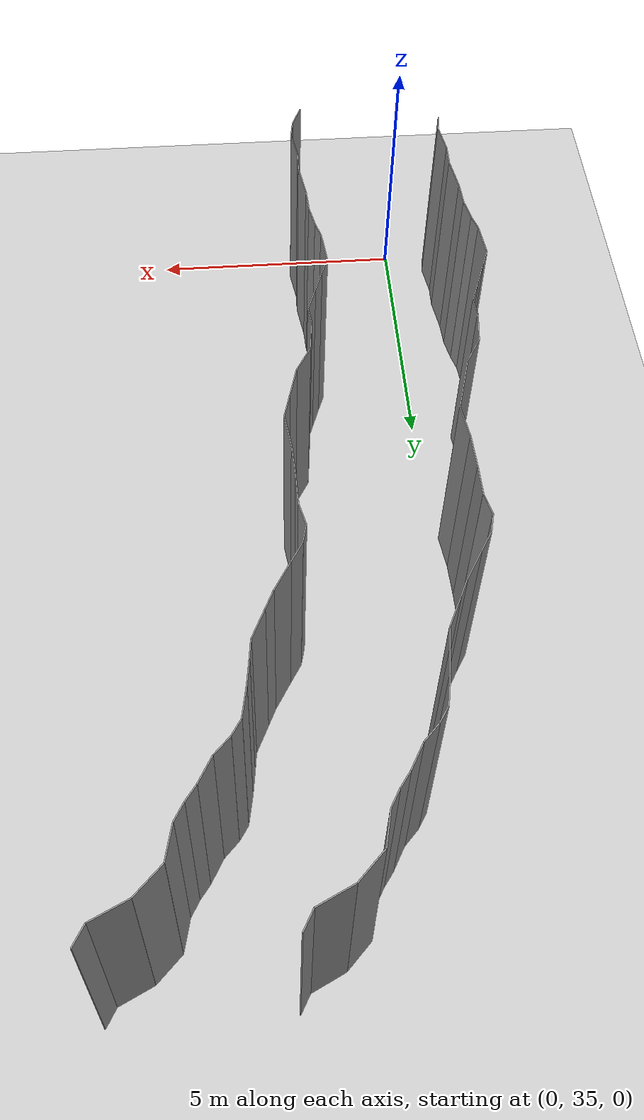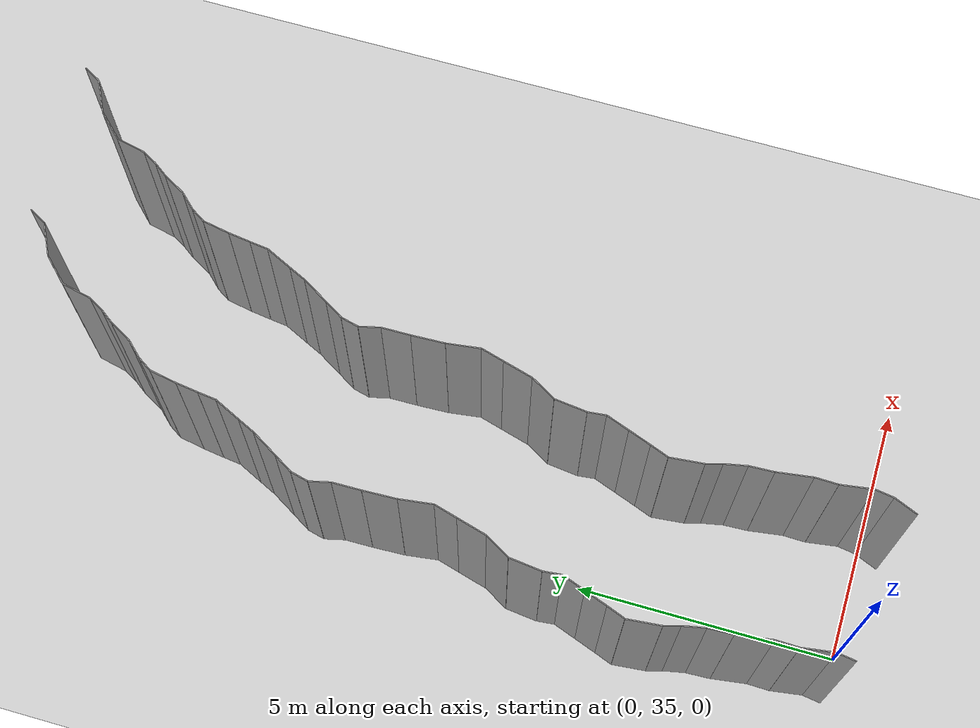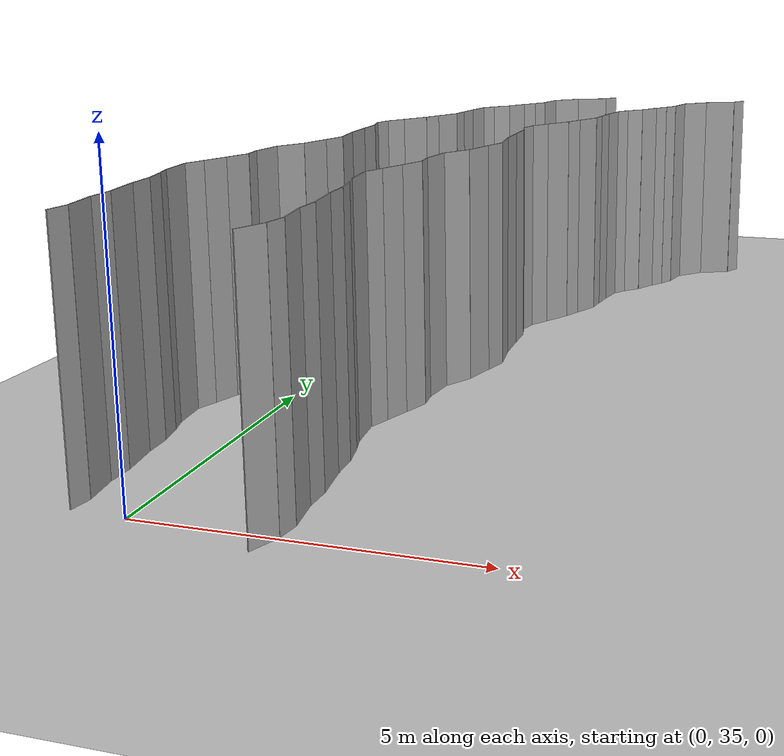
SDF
<sdf version="1.6">
 <world name="default">
  <model name="ground_plane">
   <static>1</static>
   <link name="link">
    <collision name="collision">
     <geometry><plane><normal>0 0 1</normal><size>200 200</size></plane></geometry>
     <surface><friction><ode><mu>100</mu><mu2>50</mu2></ode></friction></surface>
    </collision>
    <visual name="visual">
     <cast_shadows>0</cast_shadows>
     <geometry><plane><normal>0 0 1</normal><size>200 200</size></plane></geometry>
     <material>
      <script><uri>file://media/materials/scripts/gazebo.material</uri><name>Gazebo/Grey</name></script>
     </material>
    </visual>
   </link>
   <pose>0 100 0 0 -0 0</pose>
  </model>
  <model name="wall_149">
   <static>1</static>
   <pose>2.0463403493837693 34.81855095070675 2 0 0 -0.39390007437567404</pose>
   <link name="link">
    <collision name="collision"><geometry><box><size>0.02 0.496965548643 4</size></box></geometry></collision>
    <visual name="visual">
     <material>
      <script><name>Gazebo/Grey</name><uri>file://media/materials/scripts/gazebo.material</uri></script>
     </material>
     <geometry><box><size>0.02 0.496965548643 4</size></box></geometry>
    </visual>
   </link>
  </model>
  <model name="wall_150">
   <static>1</static>
   <pose>-0.8307653910295786 35.22959448608529 2 0 0 -0.1504509845447729</pose>
   <link name="link">
    <collision name="collision"><geometry><box><size>0.02 0.367329010076 4</size></box></geometry></collision>
    <visual name="visual">
     <material>
      <script><name>Gazebo/Grey</name><uri>file://media/materials/scripts/gazebo.material</uri></script>
     </material>
     <geometry><box><size>0.02 0.367329010076 4</size></box></geometry>
    </visual>
   </link>
  </model>
  <model name="wall_151">
   <static>1</static>
   <pose>2.1692346089704215 35.22959448608529 2 0 0 -0.1504509845447729</pose>
   <link name="link">
    <collision name="collision"><geometry><box><size>0.02 0.367329010076 4</size></box></geometry></collision>
    <visual name="visual">
     <material>
      <script><name>Gazebo/Grey</name><uri>file://media/materials/scripts/gazebo.material</uri></script>
     </material>
     <geometry><box><size>0.02 0.367329010076 4</size></box></geometry>
    </visual>
   </link>
  </model>
  <model name="wall_152">
   <static>1</static>
   <pose>-0.8471812714148739 35.72033726766235 2 0 0 0.14119813685778265</pose>
   <link name="link">
    <collision name="collision"><geometry><box><size>0.02 0.624521231456 4</size></box></geometry></collision>
    <visual name="visual">
     <material>
      <script><name>Gazebo/Grey</name><uri>file://media/materials/scripts/gazebo.material</uri></script>
     </material>
     <geometry><box><size>0.02 0.624521231456 4</size></box></geometry>
    </visual>
   </link>
  </model>
  <model name="wall_153">
   <static>1</static>
   <pose>2.1528187285851264 35.72033726766235 2 0 0 0.14119813685778265</pose>
   <link name="link">
    <collision name="collision"><geometry><box><size>0.02 0.624521231456 4</size></box></geometry></collision>
    <visual name="visual">
     <material>
      <script><name>Gazebo/Grey</name><uri>file://media/materials/scripts/gazebo.material</uri></script>
     </material>
     <geometry><box><size>0.02 0.624521231456 4</size></box></geometry>
    </visual>
   </link>
  </model>
  <model name="wall_154">
   <static>1</static>
   <pose>-0.8857843707487641 36.250797252739716 2 0 0 -0.0241299326227305</pose>
   <link name="link">
    <collision name="collision"><geometry><box><size>0.02 0.442742803492 4</size></box></geometry></collision>
    <visual name="visual">
     <material>
      <script><name>Gazebo/Grey</name><uri>file://media/materials/scripts/gazebo.material</uri></script>
     </material>
     <geometry><box><size>0.02 0.442742803492 4</size></box></geometry>
    </visual>
   </link>
  </model>
  <model name="wall_155">
   <static>1</static>
   <pose>2.1142156292512357 36.250797252739716 2 0 0 -0.0241299326227305</pose>
   <link name="link">
    <collision name="collision"><geometry><box><size>0.02 0.442742803492 4</size></box></geometry></collision>
    <visual name="visual">
     <material>
      <script><name>Gazebo/Grey</name><uri>file://media/materials/scripts/gazebo.material</uri></script>
     </material>
     <geometry><box><size>0.02 0.442742803492 4</size></box></geometry>
    </visual>
   </link>
  </model>
  <model name="wall_156">
   <static>1</static>
   <pose>-0.9278924435614688 36.8156273364494 2 0 0 0.13725679830244053</pose>
   <link name="link">
    <collision name="collision"><geometry><box><size>0.02 0.693569225548 4</size></box></geometry></collision>
    <visual name="visual">
     <material>
      <script><name>Gazebo/Grey</name><uri>file://media/materials/scripts/gazebo.material</uri></script>
     </material>
     <geometry><box><size>0.02 0.693569225548 4</size></box></geometry>
    </visual>
   </link>
  </model>
  <model name="wall_157">
   <static>1</static>
   <pose>2.072107556438531 36.8156273364494 2 0 0 0.13725679830244053</pose>
   <link name="link">
    <collision name="collision"><geometry><box><size>0.02 0.693569225548 4</size></box></geometry></collision>
    <visual name="visual">
     <material>
      <script><name>Gazebo/Grey</name><uri>file://media/materials/scripts/gazebo.material</uri></script>
     </material>
     <geometry><box><size>0.02 0.693569225548 4</size></box></geometry>
    </visual>
   </link>
  </model>
  <model name="wall_158">
   <static>1</static>
   <pose>-0.9852781787892612 37.396884334509764 2 0 0 0.04177243855801625</pose>
   <link name="link">
    <collision name="collision"><geometry><box><size>0.02 0.4758828765 4</size></box></geometry></collision>
    <visual name="visual">
     <material>
      <script><name>Gazebo/Grey</name><uri>file://media/materials/scripts/gazebo.material</uri></script>
     </material>
     <geometry><box><size>0.02 0.4758828765 4</size></box></geometry>
    </visual>
   </link>
  </model>
  <model name="wall_159">
   <static>1</static>
   <pose>2.0147218212107387 37.396884334509764 2 0 0 0.04177243855801625</pose>
   <link name="link">
    <collision name="collision"><geometry><box><size>0.02 0.4758828765 4</size></box></geometry></collision>
    <visual name="visual">
     <material>
      <script><name>Gazebo/Grey</name><uri>file://media/materials/scripts/gazebo.material</uri></script>
     </material>
     <geometry><box><size>0.02 0.4758828765 4</size></box></geometry>
    </visual>
   </link>
  </model>
  <model name="wall_160">
   <static>1</static>
   <pose>-1.0375826737935796 37.851169824171826 2 0 0 0.1932079102040709</pose>
   <link name="link">
    <collision name="collision"><geometry><box><size>0.02 0.441314625924 4</size></box></geometry></collision>
    <visual name="visual">
     <material>
      <script><name>Gazebo/Grey</name><uri>file://media/materials/scripts/gazebo.material</uri></script>
     </material>
     <geometry><box><size>0.02 0.441314625924 4</size></box></geometry>
    </visual>
   </link>
  </model>
  <model name="wall_161">
   <static>1</static>
   <pose>1.9624173262064204 37.851169824171826 2 0 0 0.1932079102040709</pose>
   <link name="link">
    <collision name="collision"><geometry><box><size>0.02 0.441314625924 4</size></box></geometry></collision>
    <visual name="visual">
     <material>
      <script><name>Gazebo/Grey</name><uri>file://media/materials/scripts/gazebo.material</uri></script>
     </material>
     <geometry><box><size>0.02 0.441314625924 4</size></box></geometry>
    </visual>
   </link>
  </model>
  <model name="wall_162">
   <static>1</static>
   <pose>-1.1232717379677792 38.21960621935604 2 0 0 0.27784564223390856</pose>
   <link name="link">
    <collision name="collision"><geometry><box><size>0.02 0.315884162465 4</size></box></geometry></collision>
    <visual name="visual">
     <material>
      <script><name>Gazebo/Grey</name><uri>file://media/materials/scripts/gazebo.material</uri></script>
     </material>
     <geometry><box><size>0.02 0.315884162465 4</size></box></geometry>
    </visual>
   </link>
  </model>
  <model name="wall_163">
   <static>1</static>
   <pose>1.8767282620322208 38.21960621935604 2 0 0 0.27784564223390856</pose>
   <link name="link">
    <collision name="collision"><geometry><box><size>0.02 0.315884162465 4</size></box></geometry></collision>
    <visual name="visual">
     <material>
      <script><name>Gazebo/Grey</name><uri>file://media/materials/scripts/gazebo.material</uri></script>
     </material>
     <geometry><box><size>0.02 0.315884162465 4</size></box></geometry>
    </visual>
   </link>
  </model>
  <model name="wall_164">
   <static>1</static>
   <pose>-1.19698223862865 38.696664706704325 2 0 0 0.09318531489649919</pose>
   <link name="link">
    <collision name="collision"><geometry><box><size>0.02 0.653181318882 4</size></box></geometry></collision>
    <visual name="visual">
     <material>
      <script><name>Gazebo/Grey</name><uri>file://media/materials/scripts/gazebo.material</uri></script>
     </material>
     <geometry><box><size>0.02 0.653181318882 4</size></box></geometry>
    </visual>
   </link>
  </model>
  <model name="wall_165">
   <static>1</static>
   <pose>1.80301776137135 38.696664706704325 2 0 0 0.09318531489649919</pose>
   <link name="link">
    <collision name="collision"><geometry><box><size>0.02 0.653181318882 4</size></box></geometry></collision>
    <visual name="visual">
     <material>
      <script><name>Gazebo/Grey</name><uri>file://media/materials/scripts/gazebo.material</uri></script>
     </material>
     <geometry><box><size>0.02 0.653181318882 4</size></box></geometry>
    </visual>
   </link>
  </model>
  <model name="wall_166">
   <static>1</static>
   <pose>-1.1606711354563517 39.199286660504235 2 0 0 -0.35954829855200604</pose>
   <link name="link">
    <collision name="collision"><geometry><box><size>0.02 0.379140291381 4</size></box></geometry></collision>
    <visual name="visual">
     <material>
      <script><name>Gazebo/Grey</name><uri>file://media/materials/scripts/gazebo.material</uri></script>
     </material>
     <geometry><box><size>0.02 0.379140291381 4</size></box></geometry>
    </visual>
   </link>
  </model>
  <model name="wall_167">
   <static>1</static>
   <pose>1.8393288645436483 39.199286660504235 2 0 0 -0.35954829855200604</pose>
   <link name="link">
    <collision name="collision"><geometry><box><size>0.02 0.379140291381 4</size></box></geometry></collision>
    <visual name="visual">
     <material>
      <script><name>Gazebo/Grey</name><uri>file://media/materials/scripts/gazebo.material</uri></script>
     </material>
     <geometry><box><size>0.02 0.379140291381 4</size></box></geometry>
    </visual>
   </link>
  </model>
  <model name="wall_168">
   <static>1</static>
   <pose>-1.0152852117930435 39.594763209708006 2 0 0 -0.34634794454651496</pose>
   <link name="link">
    <collision name="collision"><geometry><box><size>0.02 0.463584869833 4</size></box></geometry></collision>
    <visual name="visual">
     <material>
      <script><name>Gazebo/Grey</name><uri>file://media/materials/scripts/gazebo.material</uri></script>
     </material>
     <geometry><box><size>0.02 0.463584869833 4</size></box></geometry>
    </visual>
   </link>
  </model>
  <model name="wall_169">
   <static>1</static>
   <pose>1.9847147882069565 39.594763209708006 2 0 0 -0.34634794454651496</pose>
   <link name="link">
    <collision name="collision"><geometry><box><size>0.02 0.463584869833 4</size></box></geometry></collision>
    <visual name="visual">
     <material>
      <script><name>Gazebo/Grey</name><uri>file://media/materials/scripts/gazebo.material</uri></script>
     </material>
     <geometry><box><size>0.02 0.463584869833 4</size></box></geometry>
    </visual>
   </link>
  </model>
  <model name="wall_170">
   <static>1</static>
   <pose>-0.8558548242621856 40.036595878988855 2 0 0 -0.34624930416235994</pose>
   <link name="link">
    <collision name="collision"><geometry><box><size>0.02 0.475849335737 4</size></box></geometry></collision>
    <visual name="visual">
     <material>
      <script><name>Gazebo/Grey</name><uri>file://media/materials/scripts/gazebo.material</uri></script>
     </material>
     <geometry><box><size>0.02 0.475849335737 4</size></box></geometry>
    </visual>
   </link>
  </model>
  <model name="wall_171">
   <static>1</static>
   <pose>2.1441451757378145 40.036595878988855 2 0 0 -0.34624930416235994</pose>
   <link name="link">
    <collision name="collision"><geometry><box><size>0.02 0.475849335737 4</size></box></geometry></collision>
    <visual name="visual">
     <material>
      <script><name>Gazebo/Grey</name><uri>file://media/materials/scripts/gazebo.material</uri></script>
     </material>
     <geometry><box><size>0.02 0.475849335737 4</size></box></geometry>
    </visual>
   </link>
  </model>
  <model name="wall_172">
   <static>1</static>
   <pose>-0.792989206374428 40.43344107549556 2 0 0 0.10295925259138435</pose>
   <link name="link">
    <collision name="collision"><geometry><box><size>0.02 0.347924139953 4</size></box></geometry></collision>
    <visual name="visual">
     <material>
      <script><name>Gazebo/Grey</name><uri>file://media/materials/scripts/gazebo.material</uri></script>
     </material>
     <geometry><box><size>0.02 0.347924139953 4</size></box></geometry>
    </visual>
   </link>
  </model>
  <model name="wall_173">
   <static>1</static>
   <pose>2.207010793625572 40.43344107549556 2 0 0 0.10295925259138435</pose>
   <link name="link">
    <collision name="collision"><geometry><box><size>0.02 0.347924139953 4</size></box></geometry></collision>
    <visual name="visual">
     <material>
      <script><name>Gazebo/Grey</name><uri>file://media/materials/scripts/gazebo.material</uri></script>
     </material>
     <geometry><box><size>0.02 0.347924139953 4</size></box></geometry>
    </visual>
   </link>
  </model>
  <model name="wall_174">
   <static>1</static>
   <pose>-0.7741629225939759 40.91818674523233 2 0 0 -0.11721792431574468</pose>
   <link name="link">
    <collision name="collision"><geometry><box><size>0.02 0.627717169282 4</size></box></geometry></collision>
    <visual name="visual">
     <material>
      <script><name>Gazebo/Grey</name><uri>file://media/materials/scripts/gazebo.material</uri></script>
     </material>
     <geometry><box><size>0.02 0.627717169282 4</size></box></geometry>
    </visual>
   </link>
  </model>
  <model name="wall_175">
   <static>1</static>
   <pose>2.225837077406024 40.91818674523233 2 0 0 -0.11721792431574468</pose>
   <link name="link">
    <collision name="collision"><geometry><box><size>0.02 0.627717169282 4</size></box></geometry></collision>
    <visual name="visual">
     <material>
      <script><name>Gazebo/Grey</name><uri>file://media/materials/scripts/gazebo.material</uri></script>
     </material>
     <geometry><box><size>0.02 0.627717169282 4</size></box></geometry>
    </visual>
   </link>
  </model>
  <model name="wall_176">
   <static>1</static>
   <pose>-0.5985695121379033 41.47058890323169 2 0 0 -0.5233528517558504</pose>
   <link name="link">
    <collision name="collision"><geometry><box><size>0.02 0.555787755207 4</size></box></geometry></collision>
    <visual name="visual">
     <material>
      <script><name>Gazebo/Grey</name><uri>file://media/materials/scripts/gazebo.material</uri></script>
     </material>
     <geometry><box><size>0.02 0.555787755207 4</size></box></geometry>
    </visual>
   </link>
  </model>
  <model name="wall_177">
   <static>1</static>
   <pose>2.401430487862097 41.47058890323169 2 0 0 -0.5233528517558504</pose>
   <link name="link">
    <collision name="collision"><geometry><box><size>0.02 0.555787755207 4</size></box></geometry></collision>
    <visual name="visual">
     <material>
      <script><name>Gazebo/Grey</name><uri>file://media/materials/scripts/gazebo.material</uri></script>
     </material>
     <geometry><box><size>0.02 0.555787755207 4</size></box></geometry>
    </visual>
   </link>
  </model>
  <model name="wall_178">
   <static>1</static>
   <pose>-0.38046003223682356 41.9991808050046 2 0 0 -0.2685299935454256</pose>
   <link name="link">
    <collision name="collision"><geometry><box><size>0.02 0.597191334038 4</size></box></geometry></collision>
    <visual name="visual">
     <material>
      <script><name>Gazebo/Grey</name><uri>file://media/materials/scripts/gazebo.material</uri></script>
     </material>
     <geometry><box><size>0.02 0.597191334038 4</size></box></geometry>
    </visual>
   </link>
  </model>
  <model name="wall_179">
   <static>1</static>
   <pose>2.6195399677631763 41.9991808050046 2 0 0 -0.2685299935454256</pose>
   <link name="link">
    <collision name="collision"><geometry><box><size>0.02 0.597191334038 4</size></box></geometry></collision>
    <visual name="visual">
     <material>
      <script><name>Gazebo/Grey</name><uri>file://media/materials/scripts/gazebo.material</uri></script>
     </material>
     <geometry><box><size>0.02 0.597191334038 4</size></box></geometry>
    </visual>
   </link>
  </model>
  <model name="wall_180">
   <static>1</static>
   <pose>-0.23849294736575838 42.51145017308904 2 0 0 -0.2726797602216973</pose>
   <link name="link">
    <collision name="collision"><geometry><box><size>0.02 0.465965769419 4</size></box></geometry></collision>
    <visual name="visual">
     <material>
      <script><name>Gazebo/Grey</name><uri>file://media/materials/scripts/gazebo.material</uri></script>
     </material>
     <geometry><box><size>0.02 0.465965769419 4</size></box></geometry>
    </visual>
   </link>
  </model>
  <model name="wall_181">
   <static>1</static>
   <pose>2.761507052634242 42.51145017308904 2 0 0 -0.2726797602216973</pose>
   <link name="link">
    <collision name="collision"><geometry><box><size>0.02 0.465965769419 4</size></box></geometry></collision>
    <visual name="visual">
     <material>
      <script><name>Gazebo/Grey</name><uri>file://media/materials/scripts/gazebo.material</uri></script>
     </material>
     <geometry><box><size>0.02 0.465965769419 4</size></box></geometry>
    </visual>
   </link>
  </model>
  <model name="wall_182">
   <static>1</static>
   <pose>-0.21749381832541137 43.058203343227845 2 0 0 0.12877786738828223</pose>
   <link name="link">
    <collision name="collision"><geometry><box><size>0.02 0.650140198121 4</size></box></geometry></collision>
    <visual name="visual">
     <material>
      <script><name>Gazebo/Grey</name><uri>file://media/materials/scripts/gazebo.material</uri></script>
     </material>
     <geometry><box><size>0.02 0.650140198121 4</size></box></geometry>
    </visual>
   </link>
  </model>
  <model name="wall_183">
   <static>1</static>
   <pose>2.782506181674589 43.058203343227845 2 0 0 0.12877786738828223</pose>
   <link name="link">
    <collision name="collision"><geometry><box><size>0.02 0.650140198121 4</size></box></geometry></collision>
    <visual name="visual">
     <material>
      <script><name>Gazebo/Grey</name><uri>file://media/materials/scripts/gazebo.material</uri></script>
     </material>
     <geometry><box><size>0.02 0.650140198121 4</size></box></geometry>
    </visual>
   </link>
  </model>
  <model name="wall_184">
   <static>1</static>
   <pose>-0.27024887221274146 43.7028665783337 2 0 0 0.03414541308888559</pose>
   <link name="link">
    <collision name="collision"><geometry><box><size>0.02 0.644945641365 4</size></box></geometry></collision>
    <visual name="visual">
     <material>
      <script><name>Gazebo/Grey</name><uri>file://media/materials/scripts/gazebo.material</uri></script>
     </material>
     <geometry><box><size>0.02 0.644945641365 4</size></box></geometry>
    </visual>
   </link>
  </model>
  <model name="wall_185">
   <static>1</static>
   <pose>2.7297511277872584 43.7028665783337 2 0 0 0.03414541308888559</pose>
   <link name="link">
    <collision name="collision"><geometry><box><size>0.02 0.644945641365 4</size></box></geometry></collision>
    <visual name="visual">
     <material>
      <script><name>Gazebo/Grey</name><uri>file://media/materials/scripts/gazebo.material</uri></script>
     </material>
     <geometry><box><size>0.02 0.644945641365 4</size></box></geometry>
    </visual>
   </link>
  </model>
  <model name="wall_186">
   <static>1</static>
   <pose>-0.28409382832171326 44.301602974397504 2 0 0 0.010258681896109791</pose>
   <link name="link">
    <collision name="collision"><geometry><box><size>0.02 0.552932183464 4</size></box></geometry></collision>
    <visual name="visual">
     <material>
      <script><name>Gazebo/Grey</name><uri>file://media/materials/scripts/gazebo.material</uri></script>
     </material>
     <geometry><box><size>0.02 0.552932183464 4</size></box></geometry>
    </visual>
   </link>
  </model>
  <model name="wall_187">
   <static>1</static>
   <pose>2.7159061716782866 44.301602974397504 2 0 0 0.010258681896109791</pose>
   <link name="link">
    <collision name="collision"><geometry><box><size>0.02 0.552932183464 4</size></box></geometry></collision>
    <visual name="visual">
     <material>
      <script><name>Gazebo/Grey</name><uri>file://media/materials/scripts/gazebo.material</uri></script>
     </material>
     <geometry><box><size>0.02 0.552932183464 4</size></box></geometry>
    </visual>
   </link>
  </model>
  <model name="wall_188">
   <static>1</static>
   <pose>-0.3342609913680297 44.7787057406337 2 0 0 0.23165246893831268</pose>
   <link name="link">
    <collision name="collision"><geometry><box><size>0.02 0.412316091434 4</size></box></geometry></collision>
    <visual name="visual">
     <material>
      <script><name>Gazebo/Grey</name><uri>file://media/materials/scripts/gazebo.material</uri></script>
     </material>
     <geometry><box><size>0.02 0.412316091434 4</size></box></geometry>
    </visual>
   </link>
  </model>
  <model name="wall_189">
   <static>1</static>
   <pose>2.66573900863197 44.7787057406337 2 0 0 0.23165246893831268</pose>
   <link name="link">
    <collision name="collision"><geometry><box><size>0.02 0.412316091434 4</size></box></geometry></collision>
    <visual name="visual">
     <material>
      <script><name>Gazebo/Grey</name><uri>file://media/materials/scripts/gazebo.material</uri></script>
     </material>
     <geometry><box><size>0.02 0.412316091434 4</size></box></geometry>
    </visual>
   </link>
  </model>
  <model name="wall_190">
   <static>1</static>
   <pose>-0.3397822606859564 45.14906838681725 2 0 0 -0.2415479651366333</pose>
   <link name="link">
    <collision name="collision"><geometry><box><size>0.02 0.349571303054 4</size></box></geometry></collision>
    <visual name="visual">
     <material>
      <script><name>Gazebo/Grey</name><uri>file://media/materials/scripts/gazebo.material</uri></script>
     </material>
     <geometry><box><size>0.02 0.349571303054 4</size></box></geometry>
    </visual>
   </link>
  </model>
  <model name="wall_191">
   <static>1</static>
   <pose>2.6602177393140436 45.14906838681725 2 0 0 -0.2415479651366333</pose>
   <link name="link">
    <collision name="collision"><geometry><box><size>0.02 0.349571303054 4</size></box></geometry></collision>
    <visual name="visual">
     <material>
      <script><name>Gazebo/Grey</name><uri>file://media/materials/scripts/gazebo.material</uri></script>
     </material>
     <geometry><box><size>0.02 0.349571303054 4</size></box></geometry>
    </visual>
   </link>
  </model>
  <model name="wall_192">
   <static>1</static>
   <pose>-0.19134101303724932 45.494587281813494 2 0 0 -0.5452028856498747</pose>
   <link name="link">
    <collision name="collision"><geometry><box><size>0.02 0.411234919494 4</size></box></geometry></collision>
    <visual name="visual">
     <material>
      <script><name>Gazebo/Grey</name><uri>file://media/materials/scripts/gazebo.material</uri></script>
     </material>
     <geometry><box><size>0.02 0.411234919494 4</size></box></geometry>
    </visual>
   </link>
  </model>
  <model name="wall_193">
   <static>1</static>
   <pose>2.8086589869627505 45.494587281813494 2 0 0 -0.5452028856498747</pose>
   <link name="link">
    <collision name="collision"><geometry><box><size>0.02 0.411234919494 4</size></box></geometry></collision>
    <visual name="visual">
     <material>
      <script><name>Gazebo/Grey</name><uri>file://media/materials/scripts/gazebo.material</uri></script>
     </material>
     <geometry><box><size>0.02 0.411234919494 4</size></box></geometry>
    </visual>
   </link>
  </model>
  <model name="wall_194">
   <static>1</static>
   <pose>0.06523929335011949 45.920232297307486 2 0 0 -0.5405557475985513</pose>
   <link name="link">
    <collision name="collision"><geometry><box><size>0.02 0.58276392702 4</size></box></geometry></collision>
    <visual name="visual">
     <material>
      <script><name>Gazebo/Grey</name><uri>file://media/materials/scripts/gazebo.material</uri></script>
     </material>
     <geometry><box><size>0.02 0.58276392702 4</size></box></geometry>
    </visual>
   </link>
  </model>
  <model name="wall_195">
   <static>1</static>
   <pose>3.0652392933501194 45.920232297307486 2 0 0 -0.5405557475985513</pose>
   <link name="link">
    <collision name="collision"><geometry><box><size>0.02 0.58276392702 4</size></box></geometry></collision>
    <visual name="visual">
     <material>
      <script><name>Gazebo/Grey</name><uri>file://media/materials/scripts/gazebo.material</uri></script>
     </material>
     <geometry><box><size>0.02 0.58276392702 4</size></box></geometry>
    </visual>
   </link>
  </model>
  <model name="wall_196">
   <static>1</static>
   <pose>0.2912266696608786 46.332766654824596 2 0 0 -0.43719922341279954</pose>
   <link name="link">
    <collision name="collision"><geometry><box><size>0.02 0.359177473108 4</size></box></geometry></collision>
    <visual name="visual">
     <material>
      <script><name>Gazebo/Grey</name><uri>file://media/materials/scripts/gazebo.material</uri></script>
     </material>
     <geometry><box><size>0.02 0.359177473108 4</size></box></geometry>
    </visual>
   </link>
  </model>
  <model name="wall_197">
   <static>1</static>
   <pose>3.2912266696608787 46.332766654824596 2 0 0 -0.43719922341279954</pose>
   <link name="link">
    <collision name="collision"><geometry><box><size>0.02 0.359177473108 4</size></box></geometry></collision>
    <visual name="visual">
     <material>
      <script><name>Gazebo/Grey</name><uri>file://media/materials/scripts/gazebo.material</uri></script>
     </material>
     <geometry><box><size>0.02 0.359177473108 4</size></box></geometry>
    </visual>
   </link>
  </model>
  <model name="wall_198">
   <static>1</static>
   <pose>0.485753288650014 46.74542503419017 2 0 0 -0.4426526399162673</pose>
   <link name="link">
    <collision name="collision"><geometry><box><size>0.02 0.553245720315 4</size></box></geometry></collision>
    <visual name="visual">
     <material>
      <script><name>Gazebo/Grey</name><uri>file://media/materials/scripts/gazebo.material</uri></script>
     </material>
     <geometry><box><size>0.02 0.553245720315 4</size></box></geometry>
    </visual>
   </link>
  </model>
  <model name="wall_199">
   <static>1</static>
   <pose>3.485753288650014 46.74542503419017 2 0 0 -0.4426526399162673</pose>
   <link name="link">
    <collision name="collision"><geometry><box><size>0.02 0.553245720315 4</size></box></geometry></collision>
    <visual name="visual">
     <material>
      <script><name>Gazebo/Grey</name><uri>file://media/materials/scripts/gazebo.material</uri></script>
     </material>
     <geometry><box><size>0.02 0.553245720315 4</size></box></geometry>
    </visual>
   </link>
  </model>
  <model name="wall_200">
   <static>1</static>
   <pose>0.6264707821404519 47.17204354883898 2 0 0 -0.12517594482902528</pose>
   <link name="link">
    <collision name="collision"><geometry><box><size>0.02 0.356100124947 4</size></box></geometry></collision>
    <visual name="visual">
     <material>
      <script><name>Gazebo/Grey</name><uri>file://media/materials/scripts/gazebo.material</uri></script>
     </material>
     <geometry><box><size>0.02 0.356100124947 4</size></box></geometry>
    </visual>
   </link>
  </model>
  <model name="wall_201">
   <static>1</static>
   <pose>3.626470782140452 47.17204354883898 2 0 0 -0.12517594482902528</pose>
   <link name="link">
    <collision name="collision"><geometry><box><size>0.02 0.356100124947 4</size></box></geometry></collision>
    <visual name="visual">
     <material>
      <script><name>Gazebo/Grey</name><uri>file://media/materials/scripts/gazebo.material</uri></script>
     </material>
     <geometry><box><size>0.02 0.356100124947 4</size></box></geometry>
    </visual>
   </link>
  </model>
  <model name="wall_202">
   <static>1</static>
   <pose>0.6784537866609816 47.56176181563618 2 0 0 -0.138750650940564</pose>
   <link name="link">
    <collision name="collision"><geometry><box><size>0.02 0.430257601408 4</size></box></geometry></collision>
    <visual name="visual">
     <material>
      <script><name>Gazebo/Grey</name><uri>file://media/materials/scripts/gazebo.material</uri></script>
     </material>
     <geometry><box><size>0.02 0.430257601408 4</size></box></geometry>
    </visual>
   </link>
  </model>
  <model name="wall_203">
   <static>1</static>
   <pose>3.6784537866609814 47.56176181563618 2 0 0 -0.138750650940564</pose>
   <link name="link">
    <collision name="collision"><geometry><box><size>0.02 0.430257601408 4</size></box></geometry></collision>
    <visual name="visual">
     <material>
      <script><name>Gazebo/Grey</name><uri>file://media/materials/scripts/gazebo.material</uri></script>
     </material>
     <geometry><box><size>0.02 0.430257601408 4</size></box></geometry>
    </visual>
   </link>
  </model>
  <model name="wall_204">
   <static>1</static>
   <pose>0.757287399433547 48.035705526418845 2 0 0 -0.1859573360919918</pose>
   <link name="link">
    <collision name="collision"><geometry><box><size>0.02 0.530917968626 4</size></box></geometry></collision>
    <visual name="visual">
     <material>
      <script><name>Gazebo/Grey</name><uri>file://media/materials/scripts/gazebo.material</uri></script>
     </material>
     <geometry><box><size>0.02 0.530917968626 4</size></box></geometry>
    </visual>
   </link>
  </model>
  <model name="wall_205">
   <static>1</static>
   <pose>3.757287399433547 48.035705526418845 2 0 0 -0.1859573360919918</pose>
   <link name="link">
    <collision name="collision"><geometry><box><size>0.02 0.530917968626 4</size></box></geometry></collision>
    <visual name="visual">
     <material>
      <script><name>Gazebo/Grey</name><uri>file://media/materials/scripts/gazebo.material</uri></script>
     </material>
     <geometry><box><size>0.02 0.530917968626 4</size></box></geometry>
    </visual>
   </link>
  </model>
  <model name="wall_206">
   <static>1</static>
   <pose>0.8892318615404565 48.42610224597583 2 0 0 -0.5691776541502682</pose>
   <link name="link">
    <collision name="collision"><geometry><box><size>0.02 0.307509182599 4</size></box></geometry></collision>
    <visual name="visual">
     <material>
      <script><name>Gazebo/Grey</name><uri>file://media/materials/scripts/gazebo.material</uri></script>
     </material>
     <geometry><box><size>0.02 0.307509182599 4</size></box></geometry>
    </visual>
   </link>
  </model>
  <model name="wall_207">
   <static>1</static>
   <pose>3.8892318615404564 48.42610224597583 2 0 0 -0.5691776541502682</pose>
   <link name="link">
    <collision name="collision"><geometry><box><size>0.02 0.307509182599 4</size></box></geometry></collision>
    <visual name="visual">
     <material>
      <script><name>Gazebo/Grey</name><uri>file://media/materials/scripts/gazebo.material</uri></script>
     </material>
     <geometry><box><size>0.02 0.307509182599 4</size></box></geometry>
    </visual>
   </link>
  </model>
  <model name="wall_208">
   <static>1</static>
   <pose>1.10528627267682 48.6948444075908 2 0 0 -0.76323785702337</pose>
   <link name="link">
    <collision name="collision"><geometry><box><size>0.02 0.385351587808 4</size></box></geometry></collision>
    <visual name="visual">
     <material>
      <script><name>Gazebo/Grey</name><uri>file://media/materials/scripts/gazebo.material</uri></script>
     </material>
     <geometry><box><size>0.02 0.385351587808 4</size></box></geometry>
    </visual>
   </link>
  </model>
  <model name="wall_209">
   <static>1</static>
   <pose>4.10528627267682 48.6948444075908 2 0 0 -0.76323785702337</pose>
   <link name="link">
    <collision name="collision"><geometry><box><size>0.02 0.385351587808 4</size></box></geometry></collision>
    <visual name="visual">
     <material>
      <script><name>Gazebo/Grey</name><uri>file://media/materials/scripts/gazebo.material</uri></script>
     </material>
     <geometry><box><size>0.02 0.385351587808 4</size></box></geometry>
    </visual>
   </link>
  </model>
  <model name="wall_210">
   <static>1</static>
   <pose>1.3570142953062982 49.04382667343974 2 0 0 -0.5143833336845921</pose>
   <link name="link">
    <collision name="collision"><geometry><box><size>0.02 0.481863832528 4</size></box></geometry></collision>
    <visual name="visual">
     <material>
      <script><name>Gazebo/Grey</name><uri>file://media/materials/scripts/gazebo.material</uri></script>
     </material>
     <geometry><box><size>0.02 0.481863832528 4</size></box></geometry>
    </visual>
   </link>
  </model>
  <model name="wall_211">
   <static>1</static>
   <pose>4.357014295306298 49.04382667343974 2 0 0 -0.5143833336845921</pose>
   <link name="link">
    <collision name="collision"><geometry><box><size>0.02 0.481863832528 4</size></box></geometry></collision>
    <visual name="visual">
     <material>
      <script><name>Gazebo/Grey</name><uri>file://media/materials/scripts/gazebo.material</uri></script>
     </material>
     <geometry><box><size>0.02 0.481863832528 4</size></box></geometry>
    </visual>
   </link>
  </model>
  <model name="wall_212">
   <static>1</static>
   <pose>1.566300715869001 49.37806521157364 2 0 0 -0.6299222967253735</pose>
   <link name="link">
    <collision name="collision"><geometry><box><size>0.02 0.308101032314 4</size></box></geometry></collision>
    <visual name="visual">
     <material>
      <script><name>Gazebo/Grey</name><uri>file://media/materials/scripts/gazebo.material</uri></script>
     </material>
     <geometry><box><size>0.02 0.308101032314 4</size></box></geometry>
    </visual>
   </link>
  </model>
  <model name="wall_213">
   <static>1</static>
   <pose>4.566300715869001 49.37806521157364 2 0 0 -0.6299222967253735</pose>
   <link name="link">
    <collision name="collision"><geometry><box><size>0.02 0.308101032314 4</size></box></geometry></collision>
    <visual name="visual">
     <material>
      <script><name>Gazebo/Grey</name><uri>file://media/materials/scripts/gazebo.material</uri></script>
     </material>
     <geometry><box><size>0.02 0.308101032314 4</size></box></geometry>
    </visual>
   </link>
  </model>
  <model name="wall_214">
   <static>1</static>
   <pose>1.7366093676156995 49.6411193265216 2 0 0 -0.5211968754127307</pose>
   <link name="link">
    <collision name="collision"><geometry><box><size>0.02 0.319571487023 4</size></box></geometry></collision>
    <visual name="visual">
     <material>
      <script><name>Gazebo/Grey</name><uri>file://media/materials/scripts/gazebo.material</uri></script>
     </material>
     <geometry><box><size>0.02 0.319571487023 4</size></box></geometry>
    </visual>
   </link>
  </model>
  <model name="wall_215">
   <static>1</static>
   <pose>4.736609367615699 49.6411193265216 2 0 0 -0.5211968754127307</pose>
   <link name="link">
    <collision name="collision"><geometry><box><size>0.02 0.319571487023 4</size></box></geometry></collision>
    <visual name="visual">
     <material>
      <script><name>Gazebo/Grey</name><uri>file://media/materials/scripts/gazebo.material</uri></script>
     </material>
     <geometry><box><size>0.02 0.319571487023 4</size></box></geometry>
    </visual>
   </link>
  </model>
  <model name="wall_216">
   <static>1</static>
   <pose>1.879776032095702 50.06297428633619 2 0 0 -0.2208684697924571</pose>
   <link name="link">
    <collision name="collision"><geometry><box><size>0.02 0.5806759409 4</size></box></geometry></collision>
    <visual name="visual">
     <material>
      <script><name>Gazebo/Grey</name><uri>file://media/materials/scripts/gazebo.material</uri></script>
     </material>
     <geometry><box><size>0.02 0.5806759409 4</size></box></geometry>
    </visual>
   </link>
  </model>
  <model name="wall_217">
   <static>1</static>
   <pose>4.879776032095702 50.06297428633619 2 0 0 -0.2208684697924571</pose>
   <link name="link">
    <collision name="collision"><geometry><box><size>0.02 0.5806759409 4</size></box></geometry></collision>
    <visual name="visual">
     <material>
      <script><name>Gazebo/Grey</name><uri>file://media/materials/scripts/gazebo.material</uri></script>
     </material>
     <geometry><box><size>0.02 0.5806759409 4</size></box></geometry>
    </visual>
   </link>
  </model>
  <model name="wall_218">
   <static>1</static>
   <pose>2.162037707903434 50.56805293567465 2 0 0 -0.7782727904561537</pose>
   <link name="link">
    <collision name="collision"><geometry><box><size>0.02 0.622904733 4</size></box></geometry></collision>
    <visual name="visual">
     <material>
      <script><name>Gazebo/Grey</name><uri>file://media/materials/scripts/gazebo.material</uri></script>
     </material>
     <geometry><box><size>0.02 0.622904733 4</size></box></geometry>
    </visual>
   </link>
  </model>
  <model name="wall_219">
   <static>1</static>
   <pose>5.162037707903433 50.56805293567465 2 0 0 -0.7782727904561537</pose>
   <link name="link">
    <collision name="collision"><geometry><box><size>0.02 0.622904733 4</size></box></geometry></collision>
    <visual name="visual">
     <material>
      <script><name>Gazebo/Grey</name><uri>file://media/materials/scripts/gazebo.material</uri></script>
     </material>
     <geometry><box><size>0.02 0.622904733 4</size></box></geometry>
    </visual>
   </link>
  </model>
  <model name="wall_220">
   <static>1</static>
   <pose>2.6801448731684614 50.93486998433601 2 0 0 -1.1197906566966944</pose>
   <link name="link">
    <collision name="collision"><geometry><box><size>0.02 0.66544181686 4</size></box></geometry></collision>
    <visual name="visual">
     <material>
      <script><name>Gazebo/Grey</name><uri>file://media/materials/scripts/gazebo.material</uri></script>
     </material>
     <geometry><box><size>0.02 0.66544181686 4</size></box></geometry>
    </visual>
   </link>
  </model>
  <model name="wall_221">
   <static>1</static>
   <pose>5.680144873168461 50.93486998433601 2 0 0 -1.1197906566966944</pose>
   <link name="link">
    <collision name="collision"><geometry><box><size>0.02 0.66544181686 4</size></box></geometry></collision>
    <visual name="visual">
     <material>
      <script><name>Gazebo/Grey</name><uri>file://media/materials/scripts/gazebo.material</uri></script>
     </material>
     <geometry><box><size>0.02 0.66544181686 4</size></box></geometry>
    </visual>
   </link>
  </model>
  <model name="wall_222">
   <static>1</static>
   <pose>3.069244775826097 51.23843736817151 2 0 0 -0.5146242176219583</pose>
   <link name="link">
    <collision name="collision"><geometry><box><size>0.02 0.364269009033 4</size></box></geometry></collision>
    <visual name="visual">
     <material>
      <script><name>Gazebo/Grey</name><uri>file://media/materials/scripts/gazebo.material</uri></script>
     </material>
     <geometry><box><size>0.02 0.364269009033 4</size></box></geometry>
    </visual>
   </link>
  </model>
  <model name="wall_223">
   <static>1</static>
   <pose>6.069244775826097 51.23843736817151 2 0 0 -0.5146242176219583</pose>
   <link name="link">
    <collision name="collision"><geometry><box><size>0.02 0.364269009033 4</size></box></geometry></collision>
    <visual name="visual">
     <material>
      <script><name>Gazebo/Grey</name><uri>file://media/materials/scripts/gazebo.material</uri></script>
     </material>
     <geometry><box><size>0.02 0.364269009033 4</size></box></geometry>
    </visual>
   </link>
  </model>
 </world>
</sdf>
